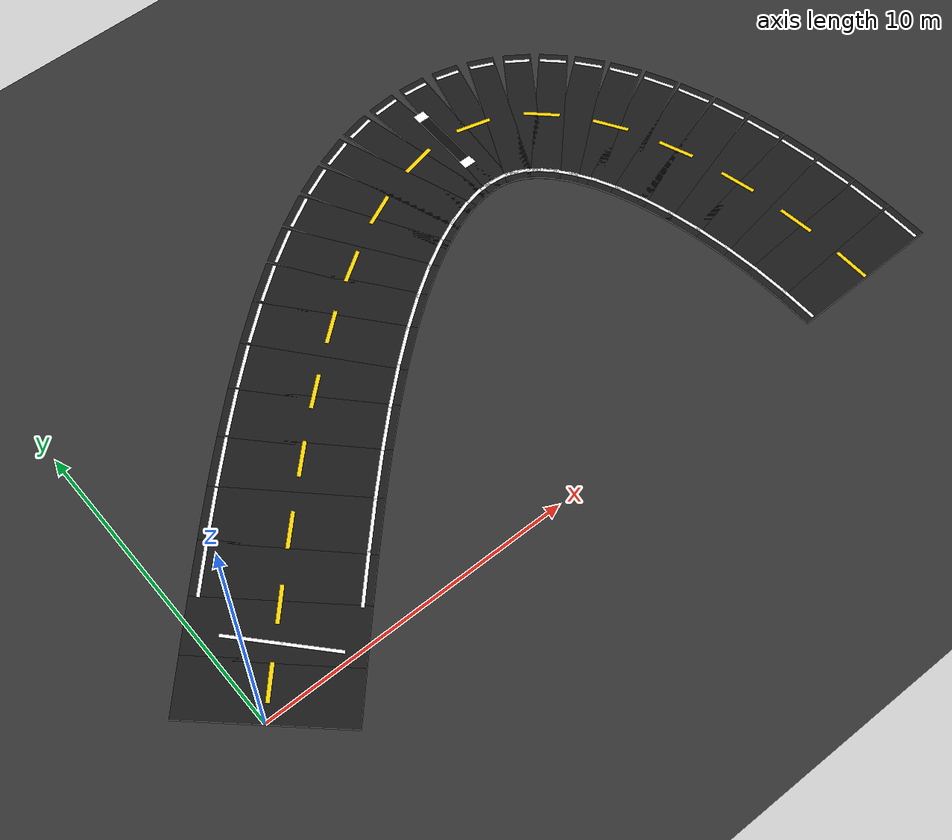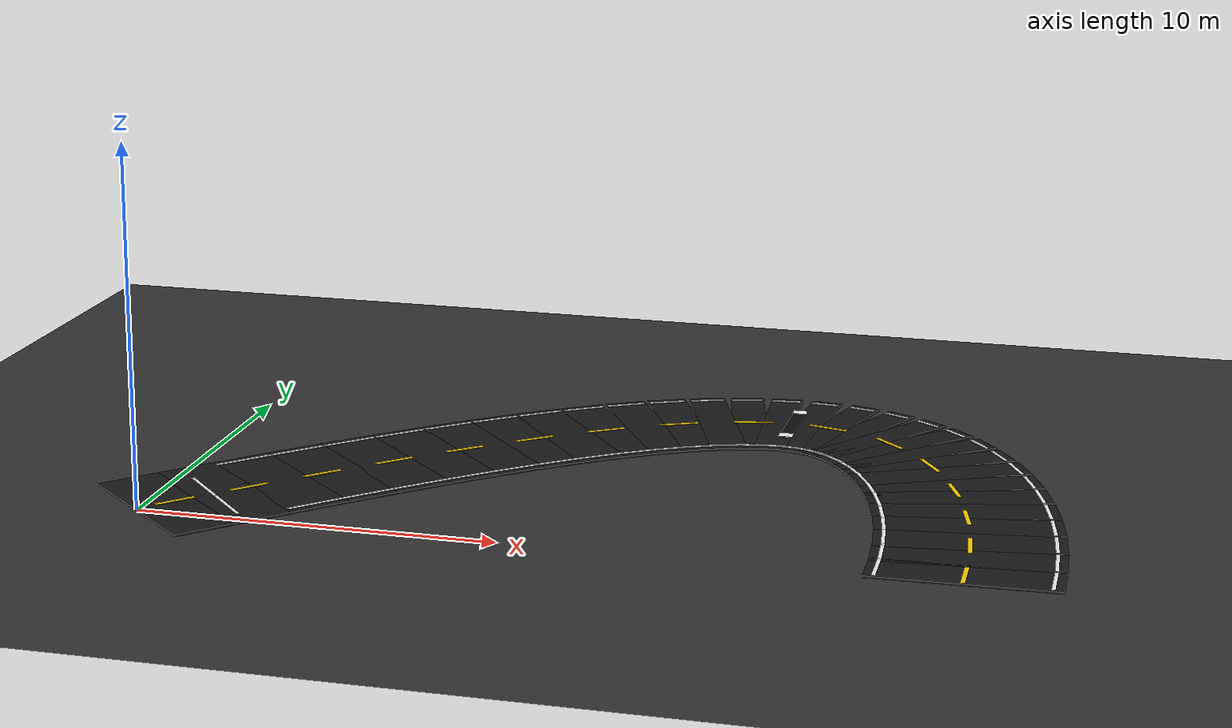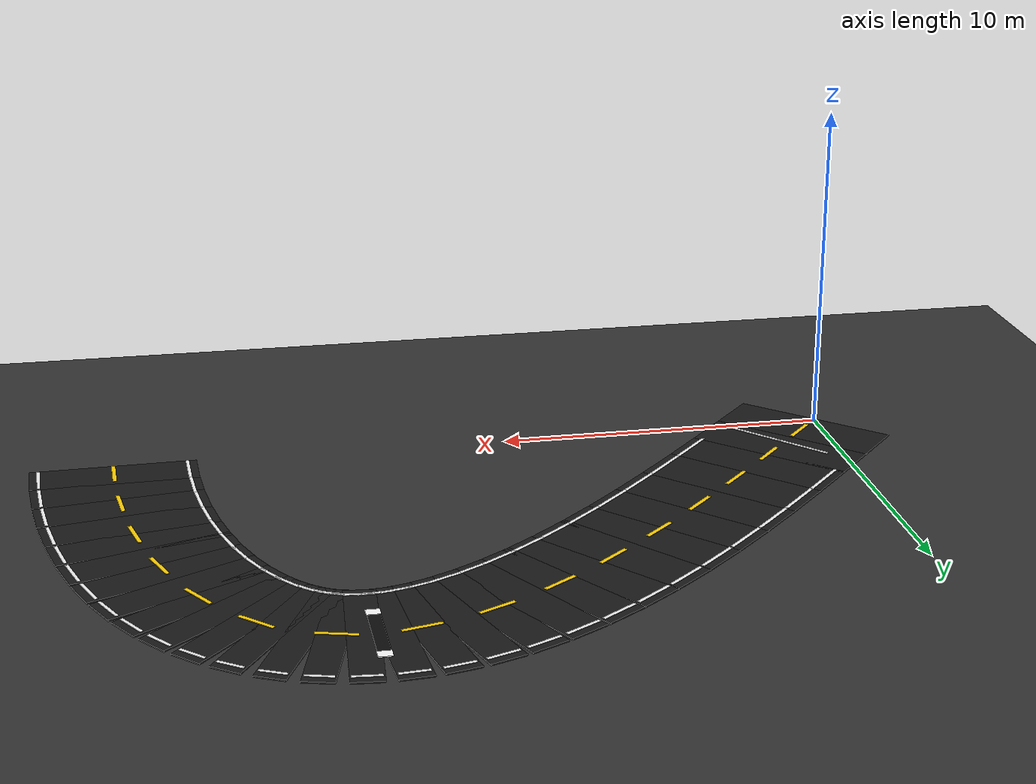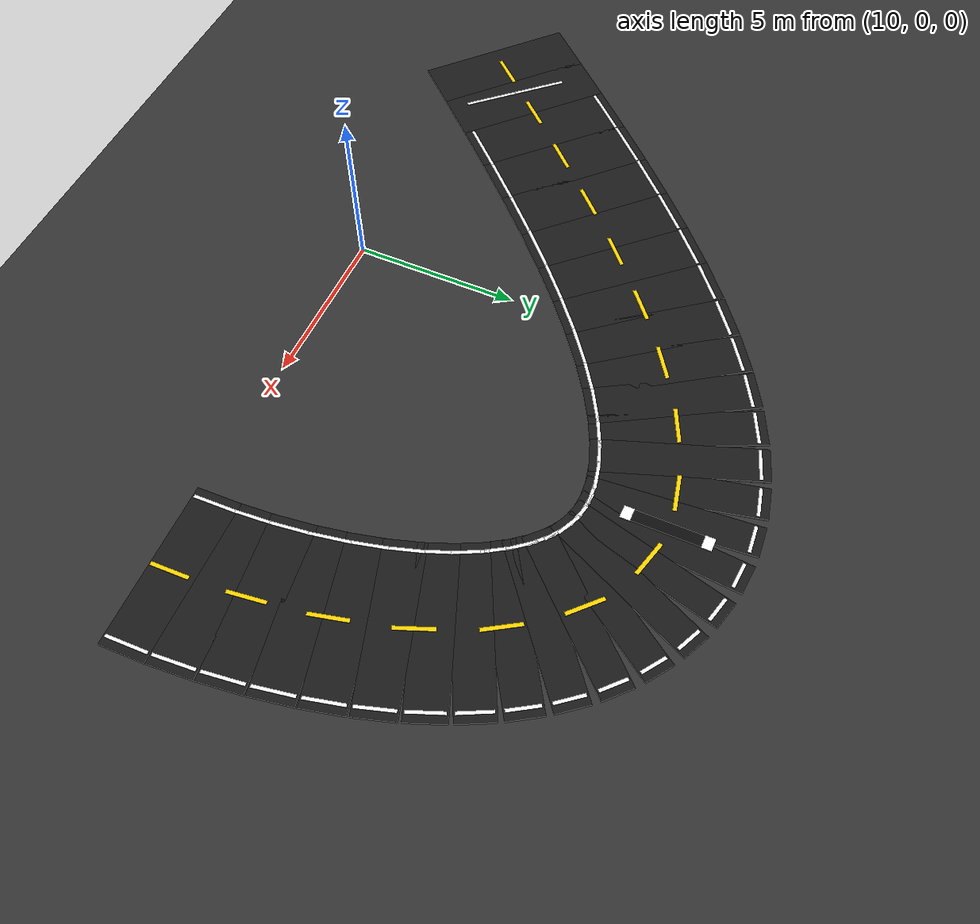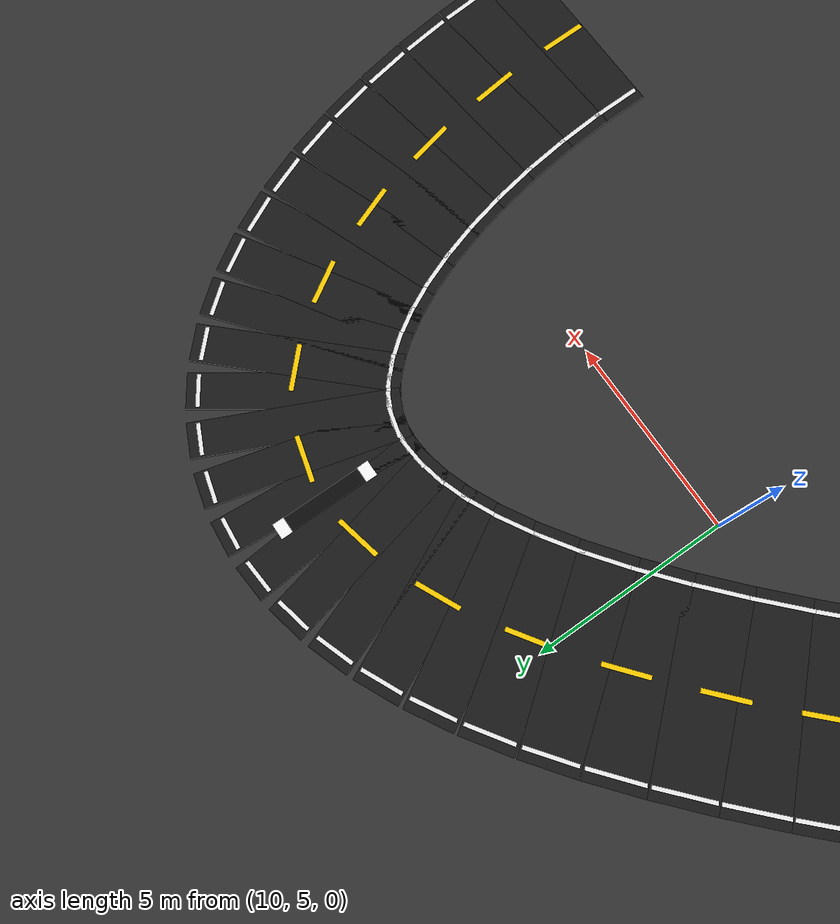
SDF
<sdf version="1.6">
 <world name="adas_figure8_circuit">
  <model name="ground">
   <static>true</static>
   <link name="link">
    <collision name="collision">
     <geometry><plane><normal>0 0 1</normal><size>80.0 80.0</size></plane></geometry>
    </collision>
    <visual name="visual">
     <geometry><plane><normal>0 0 1</normal><size>80.0 80.0</size></plane></geometry>
     <material><ambient>0.16 0.16 0.16 1</ambient><diffuse>0.20 0.20 0.20 1</diffuse></material>
    </visual>
   </link>
  </model>
  <model name="road_000">
   <static>true</static>
   <pose>0.5757 0.6272 0.025 0 0 0.828166</pose>
   <link name="link">
    <collision name="collision"><geometry><box><size>1.8027 5.000 0.05</size></box></geometry></collision>
    <visual name="visual">
     <geometry><box><size>1.8027 5.000 0.05</size></box></geometry>
     <material><ambient>0.07 0.07 0.07 1</ambient><diffuse>0.10 0.10 0.10 1</diffuse></material>
    </visual>
   </link>
  </model>
  <model name="road_001">
   <static>true</static>
   <pose>1.7255 1.8746 0.025 0 0 0.824044</pose>
   <link name="link">
    <collision name="collision"><geometry><box><size>1.7904 5.000 0.05</size></box></geometry></collision>
    <visual name="visual">
     <geometry><box><size>1.7904 5.000 0.05</size></box></geometry>
     <material><ambient>0.07 0.07 0.07 1</ambient><diffuse>0.10 0.10 0.10 1</diffuse></material>
    </visual>
   </link>
  </model>
  <model name="road_002">
   <static>true</static>
   <pose>2.8706 3.1016 0.025 0 0 0.815676</pose>
   <link name="link">
    <collision name="collision"><geometry><box><size>1.7661 5.000 0.05</size></box></geometry></collision>
    <visual name="visual">
     <geometry><box><size>1.7661 5.000 0.05</size></box></geometry>
     <material><ambient>0.07 0.07 0.07 1</ambient><diffuse>0.10 0.10 0.10 1</diffuse></material>
    </visual>
   </link>
  </model>
  <model name="road_003">
   <static>true</static>
   <pose>4.0078 4.2945 0.025 0 0 0.802808</pose>
   <link name="link">
    <collision name="collision"><geometry><box><size>1.7302 5.000 0.05</size></box></geometry></collision>
    <visual name="visual">
     <geometry><box><size>1.7302 5.000 0.05</size></box></geometry>
     <material><ambient>0.07 0.07 0.07 1</ambient><diffuse>0.10 0.10 0.10 1</diffuse></material>
    </visual>
   </link>
  </model>
  <model name="road_004">
   <static>true</static>
   <pose>5.1340 5.4404 0.025 0 0 0.785040</pose>
   <link name="link">
    <collision name="collision"><geometry><box><size>1.6833 5.000 0.05</size></box></geometry></collision>
    <visual name="visual">
     <geometry><box><size>1.6833 5.000 0.05</size></box></geometry>
     <material><ambient>0.07 0.07 0.07 1</ambient><diffuse>0.10 0.10 0.10 1</diffuse></material>
    </visual>
   </link>
  </model>
  <model name="road_005">
   <static>true</static>
   <pose>6.2462 6.5267 0.025 0 0 0.761799</pose>
   <link name="link">
    <collision name="collision"><geometry><box><size>1.6262 5.000 0.05</size></box></geometry></collision>
    <visual name="visual">
     <geometry><box><size>1.6262 5.000 0.05</size></box></geometry>
     <material><ambient>0.07 0.07 0.07 1</ambient><diffuse>0.10 0.10 0.10 1</diffuse></material>
    </visual>
   </link>
  </model>
  <model name="road_006">
   <static>true</static>
   <pose>7.3412 7.5415 0.025 0 0 0.732304</pose>
   <link name="link">
    <collision name="collision"><geometry><box><size>1.5600 5.000 0.05</size></box></geometry></collision>
    <visual name="visual">
     <geometry><box><size>1.5600 5.000 0.05</size></box></geometry>
     <material><ambient>0.07 0.07 0.07 1</ambient><diffuse>0.10 0.10 0.10 1</diffuse></material>
    </visual>
   </link>
  </model>
  <model name="road_007">
   <static>true</static>
   <pose>8.4162 8.4737 0.025 0 0 0.695520</pose>
   <link name="link">
    <collision name="collision"><geometry><box><size>1.4861 5.000 0.05</size></box></geometry></collision>
    <visual name="visual">
     <geometry><box><size>1.4861 5.000 0.05</size></box></geometry>
     <material><ambient>0.07 0.07 0.07 1</ambient><diffuse>0.10 0.10 0.10 1</diffuse></material>
    </visual>
   </link>
  </model>
  <model name="road_008">
   <static>true</static>
   <pose>9.4680 9.3130 0.025 0 0 0.650103</pose>
   <link name="link">
    <collision name="collision"><geometry><box><size>1.4060 5.000 0.05</size></box></geometry></collision>
    <visual name="visual">
     <geometry><box><size>1.4060 5.000 0.05</size></box></geometry>
     <material><ambient>0.07 0.07 0.07 1</ambient><diffuse>0.10 0.10 0.10 1</diffuse></material>
    </visual>
   </link>
  </model>
  <model name="road_009">
   <static>true</static>
   <pose>10.4939 10.0503 0.025 0 0 0.594333</pose>
   <link name="link">
    <collision name="collision"><geometry><box><size>1.3217 5.000 0.05</size></box></geometry></collision>
    <visual name="visual">
     <geometry><box><size>1.3217 5.000 0.05</size></box></geometry>
     <material><ambient>0.07 0.07 0.07 1</ambient><diffuse>0.10 0.10 0.10 1</diffuse></material>
    </visual>
   </link>
  </model>
  <model name="road_010">
   <static>true</static>
   <pose>11.4910 10.6774 0.025 0 0 0.526076</pose>
   <link name="link">
    <collision name="collision"><geometry><box><size>1.2356 5.000 0.05</size></box></geometry></collision>
    <visual name="visual">
     <geometry><box><size>1.2356 5.000 0.05</size></box></geometry>
     <material><ambient>0.07 0.07 0.07 1</ambient><diffuse>0.10 0.10 0.10 1</diffuse></material>
    </visual>
   </link>
  </model>
  <model name="road_011">
   <static>true</static>
   <pose>12.4567 11.1876 0.025 0 0 0.442808</pose>
   <link name="link">
    <collision name="collision"><geometry><box><size>1.1505 5.000 0.05</size></box></geometry></collision>
    <visual name="visual">
     <geometry><box><size>1.1505 5.000 0.05</size></box></geometry>
     <material><ambient>0.07 0.07 0.07 1</ambient><diffuse>0.10 0.10 0.10 1</diffuse></material>
    </visual>
   </link>
  </model>
  <model name="road_012">
   <static>true</static>
   <pose>13.3882 11.5752 0.025 0 0 0.341806</pose>
   <link name="link">
    <collision name="collision"><geometry><box><size>1.0699 5.000 0.05</size></box></geometry></collision>
    <visual name="visual">
     <geometry><box><size>1.0699 5.000 0.05</size></box></geometry>
     <material><ambient>0.07 0.07 0.07 1</ambient><diffuse>0.10 0.10 0.10 1</diffuse></material>
    </visual>
   </link>
  </model>
  <model name="road_013">
   <static>true</static>
   <pose>14.2830 11.8360 0.025 0 0 0.220696</pose>
   <link name="link">
    <collision name="collision"><geometry><box><size>0.9976 5.000 0.05</size></box></geometry></collision>
    <visual name="visual">
     <geometry><box><size>0.9976 5.000 0.05</size></box></geometry>
     <material><ambient>0.07 0.07 0.07 1</ambient><diffuse>0.10 0.10 0.10 1</diffuse></material>
    </visual>
   </link>
  </model>
  <model name="road_014">
   <static>true</static>
   <pose>15.1386 11.9671 0.025 0 0 0.078521</pose>
   <link name="link">
    <collision name="collision"><geometry><box><size>0.9381 5.000 0.05</size></box></geometry></collision>
    <visual name="visual">
     <geometry><box><size>0.9381 5.000 0.05</size></box></geometry>
     <material><ambient>0.07 0.07 0.07 1</ambient><diffuse>0.10 0.10 0.10 1</diffuse></material>
    </visual>
   </link>
  </model>
  <model name="road_015">
   <static>true</static>
   <pose>15.9528 11.9671 0.025 0 0 -0.082725</pose>
   <link name="link">
    <collision name="collision"><geometry><box><size>0.8956 5.000 0.05</size></box></geometry></collision>
    <visual name="visual">
     <geometry><box><size>0.8956 5.000 0.05</size></box></geometry>
     <material><ambient>0.07 0.07 0.07 1</ambient><diffuse>0.10 0.10 0.10 1</diffuse></material>
    </visual>
   </link>
  </model>
  <model name="road_016">
   <static>true</static>
   <pose>16.7232 11.8360 0.025 0 0 -0.256877</pose>
   <link name="link">
    <collision name="collision"><geometry><box><size>0.8734 5.000 0.05</size></box></geometry></collision>
    <visual name="visual">
     <geometry><box><size>0.8734 5.000 0.05</size></box></geometry>
     <material><ambient>0.07 0.07 0.07 1</ambient><diffuse>0.10 0.10 0.10 1</diffuse></material>
    </visual>
   </link>
  </model>
  <model name="road_017">
   <static>true</static>
   <pose>17.4478 11.5752 0.025 0 0 -0.434146</pose>
   <link name="link">
    <collision name="collision"><geometry><box><size>0.8729 5.000 0.05</size></box></geometry></collision>
    <visual name="visual">
     <geometry><box><size>0.8729 5.000 0.05</size></box></geometry>
     <material><ambient>0.07 0.07 0.07 1</ambient><diffuse>0.10 0.10 0.10 1</diffuse></material>
    </visual>
   </link>
  </model>
  <model name="road_018">
   <static>true</static>
   <pose>18.1246 11.1876 0.025 0 0 -0.603974</pose>
   <link name="link">
    <collision name="collision"><geometry><box><size>0.8926 5.000 0.05</size></box></geometry></collision>
    <visual name="visual">
     <geometry><box><size>0.8926 5.000 0.05</size></box></geometry>
     <material><ambient>0.07 0.07 0.07 1</ambient><diffuse>0.10 0.10 0.10 1</diffuse></material>
    </visual>
   </link>
  </model>
  <model name="road_019">
   <static>true</static>
   <pose>18.7517 10.6774 0.025 0 0 -0.758473</pose>
   <link name="link">
    <collision name="collision"><geometry><box><size>0.9291 5.000 0.05</size></box></geometry></collision>
    <visual name="visual">
     <geometry><box><size>0.9291 5.000 0.05</size></box></geometry>
     <material><ambient>0.07 0.07 0.07 1</ambient><diffuse>0.10 0.10 0.10 1</diffuse></material>
    </visual>
   </link>
  </model>
  <model name="road_020">
   <static>true</static>
   <pose>19.3274 10.0503 0.025 0 0 -0.894005</pose>
   <link name="link">
    <collision name="collision"><geometry><box><size>0.9775 5.000 0.05</size></box></geometry></collision>
    <visual name="visual">
     <geometry><box><size>0.9775 5.000 0.05</size></box></geometry>
     <material><ambient>0.07 0.07 0.07 1</ambient><diffuse>0.10 0.10 0.10 1</diffuse></material>
    </visual>
   </link>
  </model>
  <model name="road_021">
   <static>true</static>
   <pose>19.8501 9.3130 0.025 0 0 -1.010547</pose>
   <link name="link">
    <collision name="collision"><geometry><box><size>1.0331 5.000 0.05</size></box></geometry></collision>
    <visual name="visual">
     <geometry><box><size>1.0331 5.000 0.05</size></box></geometry>
     <material><ambient>0.07 0.07 0.07 1</ambient><diffuse>0.10 0.10 0.10 1</diffuse></material>
    </visual>
   </link>
  </model>
  <model name="road_022">
   <static>true</static>
   <pose>20.3184 8.4737 0.025 0 0 -1.110140</pose>
   <link name="link">
    <collision name="collision"><geometry><box><size>1.0915 5.000 0.05</size></box></geometry></collision>
    <visual name="visual">
     <geometry><box><size>1.0915 5.000 0.05</size></box></geometry>
     <material><ambient>0.07 0.07 0.07 1</ambient><diffuse>0.10 0.10 0.10 1</diffuse></material>
    </visual>
   </link>
  </model>
  <model name="road_023">
   <static>true</static>
   <pose>20.7310 7.5415 0.025 0 0 -1.195586</pose>
   <link name="link">
    <collision name="collision"><geometry><box><size>1.1491 5.000 0.05</size></box></geometry></collision>
    <visual name="visual">
     <geometry><box><size>1.1491 5.000 0.05</size></box></geometry>
     <material><ambient>0.07 0.07 0.07 1</ambient><diffuse>0.10 0.10 0.10 1</diffuse></material>
    </visual>
   </link>
  </model>
  <model name="road_024">
   <static>true</static>
   <pose>21.0868 6.5267 0.025 0 0 -1.269703</pose>
   <link name="link">
    <collision name="collision"><geometry><box><size>1.2030 5.000 0.05</size></box></geometry></collision>
    <visual name="visual">
     <geometry><box><size>1.2030 5.000 0.05</size></box></geometry>
     <material><ambient>0.07 0.07 0.07 1</ambient><diffuse>0.10 0.10 0.10 1</diffuse></material>
    </visual>
   </link>
  </model>
  <model name="road_025">
   <static>true</static>
   <pose>21.3848 5.4404 0.025 0 0 -1.335014</pose>
   <link name="link">
    <collision name="collision"><geometry><box><size>1.2510 5.000 0.05</size></box></geometry></collision>
    <visual name="visual">
     <geometry><box><size>1.2510 5.000 0.05</size></box></geometry>
     <material><ambient>0.07 0.07 0.07 1</ambient><diffuse>0.10 0.10 0.10 1</diffuse></material>
    </visual>
   </link>
  </model>
  <model name="road_026">
   <static>true</static>
   <pose>21.6242 4.2945 0.025 0 0 -1.393677</pose>
   <link name="link">
    <collision name="collision"><geometry><box><size>1.2913 5.000 0.05</size></box></geometry></collision>
    <visual name="visual">
     <geometry><box><size>1.2913 5.000 0.05</size></box></geometry>
     <material><ambient>0.07 0.07 0.07 1</ambient><diffuse>0.10 0.10 0.10 1</diffuse></material>
    </visual>
   </link>
  </model>
  <model name="road_027">
   <static>true</static>
   <pose>21.8043 3.1016 0.025 0 0 -1.447513</pose>
   <link name="link">
    <collision name="collision"><geometry><box><size>1.3225 5.000 0.05</size></box></geometry></collision>
    <visual name="visual">
     <geometry><box><size>1.3225 5.000 0.05</size></box></geometry>
     <material><ambient>0.07 0.07 0.07 1</ambient><diffuse>0.10 0.10 0.10 1</diffuse></material>
    </visual>
   </link>
  </model>
  <model name="road_028">
   <static>true</static>
   <pose>21.9247 1.8746 0.025 0 0 -1.498082</pose>
   <link name="link">
    <collision name="collision"><geometry><box><size>1.3439 5.000 0.05</size></box></geometry></collision>
    <visual name="visual">
     <geometry><box><size>1.3439 5.000 0.05</size></box></geometry>
     <material><ambient>0.07 0.07 0.07 1</ambient><diffuse>0.10 0.10 0.10 1</diffuse></material>
    </visual>
   </link>
  </model>
  <model name="road_029">
   <static>true</static>
   <pose>21.9849 0.6272 0.025 0 0 -1.546764</pose>
   <link name="link">
    <collision name="collision"><geometry><box><size>1.3547 5.000 0.05</size></box></geometry></collision>
    <visual name="visual">
     <geometry><box><size>1.3547 5.000 0.05</size></box></geometry>
     <material><ambient>0.07 0.07 0.07 1</ambient><diffuse>0.10 0.10 0.10 1</diffuse></material>
    </visual>
   </link>
  </model>
  <model name="center_dash_000">
   <static>true</static>
   <pose>0.7523 0.8196 0.058 0 0 0.828166</pose>
   <link name="link">
    <visual name="visual">
     <geometry><box><size>1.150 0.12 0.02</size></box></geometry>
     <material><ambient>1 0.82 0 1</ambient><diffuse>1 0.82 0 1</diffuse></material>
    </visual>
   </link>
  </model>
  <model name="center_dash_001">
   <static>true</static>
   <pose>2.2620 2.4543 0.058 0 0 0.824044</pose>
   <link name="link">
    <visual name="visual">
     <geometry><box><size>1.150 0.12 0.02</size></box></geometry>
     <material><ambient>1 0.82 0 1</ambient><diffuse>1 0.82 0 1</diffuse></material>
    </visual>
   </link>
  </model>
  <model name="center_dash_002">
   <static>true</static>
   <pose>3.7914 4.0704 0.058 0 0 0.802808</pose>
   <link name="link">
    <visual name="visual">
     <geometry><box><size>1.150 0.12 0.02</size></box></geometry>
     <material><ambient>1 0.82 0 1</ambient><diffuse>1 0.82 0 1</diffuse></material>
    </visual>
   </link>
  </model>
  <model name="center_dash_003">
   <static>true</static>
   <pose>5.3511 5.6573 0.058 0 0 0.785040</pose>
   <link name="link">
    <visual name="visual">
     <geometry><box><size>1.150 0.12 0.02</size></box></geometry>
     <material><ambient>1 0.82 0 1</ambient><diffuse>1 0.82 0 1</diffuse></material>
    </visual>
   </link>
  </model>
  <model name="center_dash_004">
   <static>true</static>
   <pose>6.9576 7.1966 0.058 0 0 0.732304</pose>
   <link name="link">
    <visual name="visual">
     <geometry><box><size>1.150 0.12 0.02</size></box></geometry>
     <material><ambient>1 0.82 0 1</ambient><diffuse>1 0.82 0 1</diffuse></material>
    </visual>
   </link>
  </model>
  <model name="center_dash_005">
   <static>true</static>
   <pose>8.6358 8.6570 0.058 0 0 0.695520</pose>
   <link name="link">
    <visual name="visual">
     <geometry><box><size>1.150 0.12 0.02</size></box></geometry>
     <material><ambient>1 0.82 0 1</ambient><diffuse>1 0.82 0 1</diffuse></material>
    </visual>
   </link>
  </model>
  <model name="center_dash_006">
   <static>true</static>
   <pose>10.4122 9.9951 0.058 0 0 0.594333</pose>
   <link name="link">
    <visual name="visual">
     <geometry><box><size>1.150 0.12 0.02</size></box></geometry>
     <material><ambient>1 0.82 0 1</ambient><diffuse>1 0.82 0 1</diffuse></material>
    </visual>
   </link>
  </model>
  <model name="center_dash_007">
   <static>true</static>
   <pose>12.3255 11.1254 0.058 0 0 0.442808</pose>
   <link name="link">
    <visual name="visual">
     <geometry><box><size>1.150 0.12 0.02</size></box></geometry>
     <material><ambient>1 0.82 0 1</ambient><diffuse>1 0.82 0 1</diffuse></material>
    </visual>
   </link>
  </model>
  <model name="center_dash_008">
   <static>true</static>
   <pose>14.4156 11.8658 0.058 0 0 0.220696</pose>
   <link name="link">
    <visual name="visual">
     <geometry><box><size>1.150 0.12 0.02</size></box></geometry>
     <material><ambient>1 0.82 0 1</ambient><diffuse>1 0.82 0 1</diffuse></material>
    </visual>
   </link>
  </model>
  <model name="center_dash_009">
   <static>true</static>
   <pose>16.6187 11.8635 0.058 0 0 -0.256877</pose>
   <link name="link">
    <visual name="visual">
     <geometry><box><size>1.150 0.12 0.02</size></box></geometry>
     <material><ambient>1 0.82 0 1</ambient><diffuse>1 0.82 0 1</diffuse></material>
    </visual>
   </link>
  </model>
  <model name="center_dash_010">
   <static>true</static>
   <pose>18.5705 10.8491 0.058 0 0 -0.758473</pose>
   <link name="link">
    <visual name="visual">
     <geometry><box><size>1.150 0.12 0.02</size></box></geometry>
     <material><ambient>1 0.82 0 1</ambient><diffuse>1 0.82 0 1</diffuse></material>
    </visual>
   </link>
  </model>
  <model name="center_dash_011">
   <static>true</static>
   <pose>19.9653 9.1292 0.058 0 0 -1.010547</pose>
   <link name="link">
    <visual name="visual">
     <geometry><box><size>1.150 0.12 0.02</size></box></geometry>
     <material><ambient>1 0.82 0 1</ambient><diffuse>1 0.82 0 1</diffuse></material>
    </visual>
   </link>
  </model>
  <model name="center_dash_012">
   <static>true</static>
   <pose>20.8994 7.1141 0.058 0 0 -1.195586</pose>
   <link name="link">
    <visual name="visual">
     <geometry><box><size>1.150 0.12 0.02</size></box></geometry>
     <material><ambient>1 0.82 0 1</ambient><diffuse>1 0.82 0 1</diffuse></material>
    </visual>
   </link>
  </model>
  <model name="center_dash_013">
   <static>true</static>
   <pose>21.4973 4.9724 0.058 0 0 -1.335014</pose>
   <link name="link">
    <visual name="visual">
     <geometry><box><size>1.150 0.12 0.02</size></box></geometry>
     <material><ambient>1 0.82 0 1</ambient><diffuse>1 0.82 0 1</diffuse></material>
    </visual>
   </link>
  </model>
  <model name="center_dash_014">
   <static>true</static>
   <pose>21.8447 2.7756 0.058 0 0 -1.447513</pose>
   <link name="link">
    <visual name="visual">
     <geometry><box><size>1.150 0.12 0.02</size></box></geometry>
     <material><ambient>1 0.82 0 1</ambient><diffuse>1 0.82 0 1</diffuse></material>
    </visual>
   </link>
  </model>
  <model name="center_dash_015">
   <static>true</static>
   <pose>21.9866 0.5561 0.058 0 0 -1.546764</pose>
   <link name="link">
    <visual name="visual">
     <geometry><box><size>1.150 0.12 0.02</size></box></geometry>
     <material><ambient>1 0.82 0 1</ambient><diffuse>1 0.82 0 1</diffuse></material>
    </visual>
   </link>
  </model>
  <model name="edge_left_002">
   <static>true</static>
   <pose>1.2540 4.6231 0.058 0 0 0.815676</pose>
   <link name="link">
    <visual name="visual">
     <geometry><box><size>1.6661 0.10 0.02</size></box></geometry>
     <material><ambient>0.95 0.95 0.95 1</ambient><diffuse>0.95 0.95 0.95 1</diffuse></material>
    </visual>
   </link>
  </model>
  <model name="edge_left_003">
   <static>true</static>
   <pose>2.4109 5.8367 0.058 0 0 0.802808</pose>
   <link name="link">
    <visual name="visual">
     <geometry><box><size>1.6302 0.10 0.02</size></box></geometry>
     <material><ambient>0.95 0.95 0.95 1</ambient><diffuse>0.95 0.95 0.95 1</diffuse></material>
    </visual>
   </link>
  </model>
  <model name="edge_left_004">
   <static>true</static>
   <pose>3.5648 7.0108 0.058 0 0 0.785040</pose>
   <link name="link">
    <visual name="visual">
     <geometry><box><size>1.5833 0.10 0.02</size></box></geometry>
     <material><ambient>0.95 0.95 0.95 1</ambient><diffuse>0.95 0.95 0.95 1</diffuse></material>
    </visual>
   </link>
  </model>
  <model name="edge_left_005">
   <static>true</static>
   <pose>4.7139 8.1331 0.058 0 0 0.761799</pose>
   <link name="link">
    <visual name="visual">
     <geometry><box><size>1.5262 0.10 0.02</size></box></geometry>
     <material><ambient>0.95 0.95 0.95 1</ambient><diffuse>0.95 0.95 0.95 1</diffuse></material>
    </visual>
   </link>
  </model>
  <model name="edge_left_006">
   <static>true</static>
   <pose>5.8570 9.1924 0.058 0 0 0.732304</pose>
   <link name="link">
    <visual name="visual">
     <geometry><box><size>1.4600 0.10 0.02</size></box></geometry>
     <material><ambient>0.95 0.95 0.95 1</ambient><diffuse>0.95 0.95 0.95 1</diffuse></material>
    </visual>
   </link>
  </model>
  <model name="edge_left_007">
   <static>true</static>
   <pose>6.9936 10.1780 0.058 0 0 0.695520</pose>
   <link name="link">
    <visual name="visual">
     <geometry><box><size>1.3861 0.10 0.02</size></box></geometry>
     <material><ambient>0.95 0.95 0.95 1</ambient><diffuse>0.95 0.95 0.95 1</diffuse></material>
    </visual>
   </link>
  </model>
  <model name="edge_left_008">
   <static>true</static>
   <pose>8.1243 11.0801 0.058 0 0 0.650103</pose>
   <link name="link">
    <visual name="visual">
     <geometry><box><size>1.3060 0.10 0.02</size></box></geometry>
     <material><ambient>0.95 0.95 0.95 1</ambient><diffuse>0.95 0.95 0.95 1</diffuse></material>
    </visual>
   </link>
  </model>
  <model name="edge_left_009">
   <static>true</static>
   <pose>9.2508 11.8896 0.058 0 0 0.594333</pose>
   <link name="link">
    <visual name="visual">
     <geometry><box><size>1.2217 0.10 0.02</size></box></geometry>
     <material><ambient>0.95 0.95 0.95 1</ambient><diffuse>0.95 0.95 0.95 1</diffuse></material>
    </visual>
   </link>
  </model>
  <model name="edge_left_010">
   <static>true</static>
   <pose>10.3763 12.5972 0.058 0 0 0.526076</pose>
   <link name="link">
    <visual name="visual">
     <geometry><box><size>1.1356 0.10 0.02</size></box></geometry>
     <material><ambient>0.95 0.95 0.95 1</ambient><diffuse>0.95 0.95 0.95 1</diffuse></material>
    </visual>
   </link>
  </model>
  <model name="edge_left_011">
   <static>true</static>
   <pose>11.5054 13.1935 0.058 0 0 0.442808</pose>
   <link name="link">
    <visual name="visual">
     <geometry><box><size>1.0505 0.10 0.02</size></box></geometry>
     <material><ambient>0.95 0.95 0.95 1</ambient><diffuse>0.95 0.95 0.95 1</diffuse></material>
    </visual>
   </link>
  </model>
  <model name="edge_left_012">
   <static>true</static>
   <pose>12.6440 13.6668 0.058 0 0 0.341806</pose>
   <link name="link">
    <visual name="visual">
     <geometry><box><size>0.9699 0.10 0.02</size></box></geometry>
     <material><ambient>0.95 0.95 0.95 1</ambient><diffuse>0.95 0.95 0.95 1</diffuse></material>
    </visual>
   </link>
  </model>
  <model name="edge_left_013">
   <static>true</static>
   <pose>13.7970 14.0022 0.058 0 0 0.220696</pose>
   <link name="link">
    <visual name="visual">
     <geometry><box><size>0.8976 0.10 0.02</size></box></geometry>
     <material><ambient>0.95 0.95 0.95 1</ambient><diffuse>0.95 0.95 0.95 1</diffuse></material>
    </visual>
   </link>
  </model>
  <model name="edge_left_014">
   <static>true</static>
   <pose>14.9645 14.1803 0.058 0 0 0.078521</pose>
   <link name="link">
    <visual name="visual">
     <geometry><box><size>0.8381 0.10 0.02</size></box></geometry>
     <material><ambient>0.95 0.95 0.95 1</ambient><diffuse>0.95 0.95 0.95 1</diffuse></material>
    </visual>
   </link>
  </model>
  <model name="edge_left_015">
   <static>true</static>
   <pose>16.1362 14.1795 0.058 0 0 -0.082725</pose>
   <link name="link">
    <visual name="visual">
     <geometry><box><size>0.7956 0.10 0.02</size></box></geometry>
     <material><ambient>0.95 0.95 0.95 1</ambient><diffuse>0.95 0.95 0.95 1</diffuse></material>
    </visual>
   </link>
  </model>
  <model name="edge_left_016">
   <static>true</static>
   <pose>17.2872 13.9832 0.058 0 0 -0.256877</pose>
   <link name="link">
    <visual name="visual">
     <geometry><box><size>0.7734 0.10 0.02</size></box></geometry>
     <material><ambient>0.95 0.95 0.95 1</ambient><diffuse>0.95 0.95 0.95 1</diffuse></material>
    </visual>
   </link>
  </model>
  <model name="edge_left_017">
   <static>true</static>
   <pose>18.3816 13.5893 0.058 0 0 -0.434146</pose>
   <link name="link">
    <visual name="visual">
     <geometry><box><size>0.7729 0.10 0.02</size></box></geometry>
     <material><ambient>0.95 0.95 0.95 1</ambient><diffuse>0.95 0.95 0.95 1</diffuse></material>
    </visual>
   </link>
  </model>
  <model name="edge_left_018">
   <static>true</static>
   <pose>19.3853 13.0149 0.058 0 0 -0.603974</pose>
   <link name="link">
    <visual name="visual">
     <geometry><box><size>0.7926 0.10 0.02</size></box></geometry>
     <material><ambient>0.95 0.95 0.95 1</ambient><diffuse>0.95 0.95 0.95 1</diffuse></material>
    </visual>
   </link>
  </model>
  <model name="edge_left_019">
   <static>true</static>
   <pose>20.2786 12.2889 0.058 0 0 -0.758473</pose>
   <link name="link">
    <visual name="visual">
     <geometry><box><size>0.8291 0.10 0.02</size></box></geometry>
     <material><ambient>0.95 0.95 0.95 1</ambient><diffuse>0.95 0.95 0.95 1</diffuse></material>
    </visual>
   </link>
  </model>
  <model name="edge_left_020">
   <static>true</static>
   <pose>21.0580 11.4406 0.058 0 0 -0.894005</pose>
   <link name="link">
    <visual name="visual">
     <geometry><box><size>0.8775 0.10 0.02</size></box></geometry>
     <material><ambient>0.95 0.95 0.95 1</ambient><diffuse>0.95 0.95 0.95 1</diffuse></material>
    </visual>
   </link>
  </model>
  <model name="edge_left_021">
   <static>true</static>
   <pose>21.7307 10.4927 0.058 0 0 -1.010547</pose>
   <link name="link">
    <visual name="visual">
     <geometry><box><size>0.9331 0.10 0.02</size></box></geometry>
     <material><ambient>0.95 0.95 0.95 1</ambient><diffuse>0.95 0.95 0.95 1</diffuse></material>
    </visual>
   </link>
  </model>
  <model name="edge_left_022">
   <static>true</static>
   <pose>22.3070 9.4605 0.058 0 0 -1.110140</pose>
   <link name="link">
    <visual name="visual">
     <geometry><box><size>0.9915 0.10 0.02</size></box></geometry>
     <material><ambient>0.95 0.95 0.95 1</ambient><diffuse>0.95 0.95 0.95 1</diffuse></material>
    </visual>
   </link>
  </model>
  <model name="edge_left_023">
   <static>true</static>
   <pose>22.7966 8.3551 0.058 0 0 -1.195586</pose>
   <link name="link">
    <visual name="visual">
     <geometry><box><size>1.0491 0.10 0.02</size></box></geometry>
     <material><ambient>0.95 0.95 0.95 1</ambient><diffuse>0.95 0.95 0.95 1</diffuse></material>
    </visual>
   </link>
  </model>
  <model name="edge_left_024">
   <static>true</static>
   <pose>23.2069 7.1851 0.058 0 0 -1.269703</pose>
   <link name="link">
    <visual name="visual">
     <geometry><box><size>1.1030 0.10 0.02</size></box></geometry>
     <material><ambient>0.95 0.95 0.95 1</ambient><diffuse>0.95 0.95 0.95 1</diffuse></material>
    </visual>
   </link>
  </model>
  <model name="edge_left_025">
   <static>true</static>
   <pose>23.5434 5.9590 0.058 0 0 -1.335014</pose>
   <link name="link">
    <visual name="visual">
     <geometry><box><size>1.1510 0.10 0.02</size></box></geometry>
     <material><ambient>0.95 0.95 0.95 1</ambient><diffuse>0.95 0.95 0.95 1</diffuse></material>
    </visual>
   </link>
  </model>
  <model name="edge_left_026">
   <static>true</static>
   <pose>23.8095 4.6857 0.058 0 0 -1.393677</pose>
   <link name="link">
    <visual name="visual">
     <geometry><box><size>1.1913 0.10 0.02</size></box></geometry>
     <material><ambient>0.95 0.95 0.95 1</ambient><diffuse>0.95 0.95 0.95 1</diffuse></material>
    </visual>
   </link>
  </model>
  <model name="edge_left_027">
   <static>true</static>
   <pose>24.0075 3.3746 0.058 0 0 -1.447513</pose>
   <link name="link">
    <visual name="visual">
     <geometry><box><size>1.2225 0.10 0.02</size></box></geometry>
     <material><ambient>0.95 0.95 0.95 1</ambient><diffuse>0.95 0.95 0.95 1</diffuse></material>
    </visual>
   </link>
  </model>
  <model name="edge_left_028">
   <static>true</static>
   <pose>24.1388 2.0359 0.058 0 0 -1.498082</pose>
   <link name="link">
    <visual name="visual">
     <geometry><box><size>1.2439 0.10 0.02</size></box></geometry>
     <material><ambient>0.95 0.95 0.95 1</ambient><diffuse>0.95 0.95 0.95 1</diffuse></material>
    </visual>
   </link>
  </model>
  <model name="edge_left_029">
   <static>true</static>
   <pose>24.2043 0.6805 0.058 0 0 -1.546764</pose>
   <link name="link">
    <visual name="visual">
     <geometry><box><size>1.2547 0.10 0.02</size></box></geometry>
     <material><ambient>0.95 0.95 0.95 1</ambient><diffuse>0.95 0.95 0.95 1</diffuse></material>
    </visual>
   </link>
  </model>
  <model name="edge_right_002">
   <static>true</static>
   <pose>4.4872 1.5800 0.058 0 0 0.815676</pose>
   <link name="link">
    <visual name="visual">
     <geometry><box><size>1.6661 0.10 0.02</size></box></geometry>
     <material><ambient>0.95 0.95 0.95 1</ambient><diffuse>0.95 0.95 0.95 1</diffuse></material>
    </visual>
   </link>
  </model>
  <model name="edge_right_003">
   <static>true</static>
   <pose>5.6047 2.7523 0.058 0 0 0.802808</pose>
   <link name="link">
    <visual name="visual">
     <geometry><box><size>1.6302 0.10 0.02</size></box></geometry>
     <material><ambient>0.95 0.95 0.95 1</ambient><diffuse>0.95 0.95 0.95 1</diffuse></material>
    </visual>
   </link>
  </model>
  <model name="edge_right_004">
   <static>true</static>
   <pose>6.7033 3.8701 0.058 0 0 0.785040</pose>
   <link name="link">
    <visual name="visual">
     <geometry><box><size>1.5833 0.10 0.02</size></box></geometry>
     <material><ambient>0.95 0.95 0.95 1</ambient><diffuse>0.95 0.95 0.95 1</diffuse></material>
    </visual>
   </link>
  </model>
  <model name="edge_right_005">
   <static>true</static>
   <pose>7.7785 4.9203 0.058 0 0 0.761799</pose>
   <link name="link">
    <visual name="visual">
     <geometry><box><size>1.5262 0.10 0.02</size></box></geometry>
     <material><ambient>0.95 0.95 0.95 1</ambient><diffuse>0.95 0.95 0.95 1</diffuse></material>
    </visual>
   </link>
  </model>
  <model name="edge_right_006">
   <static>true</static>
   <pose>8.8255 5.8906 0.058 0 0 0.732304</pose>
   <link name="link">
    <visual name="visual">
     <geometry><box><size>1.4600 0.10 0.02</size></box></geometry>
     <material><ambient>0.95 0.95 0.95 1</ambient><diffuse>0.95 0.95 0.95 1</diffuse></material>
    </visual>
   </link>
  </model>
  <model name="edge_right_007">
   <static>true</static>
   <pose>9.8387 6.7693 0.058 0 0 0.695520</pose>
   <link name="link">
    <visual name="visual">
     <geometry><box><size>1.3861 0.10 0.02</size></box></geometry>
     <material><ambient>0.95 0.95 0.95 1</ambient><diffuse>0.95 0.95 0.95 1</diffuse></material>
    </visual>
   </link>
  </model>
  <model name="edge_right_008">
   <static>true</static>
   <pose>10.8117 7.5458 0.058 0 0 0.650103</pose>
   <link name="link">
    <visual name="visual">
     <geometry><box><size>1.3060 0.10 0.02</size></box></geometry>
     <material><ambient>0.95 0.95 0.95 1</ambient><diffuse>0.95 0.95 0.95 1</diffuse></material>
    </visual>
   </link>
  </model>
  <model name="edge_right_009">
   <static>true</static>
   <pose>11.7370 8.2109 0.058 0 0 0.594333</pose>
   <link name="link">
    <visual name="visual">
     <geometry><box><size>1.2217 0.10 0.02</size></box></geometry>
     <material><ambient>0.95 0.95 0.95 1</ambient><diffuse>0.95 0.95 0.95 1</diffuse></material>
    </visual>
   </link>
  </model>
  <model name="edge_right_010">
   <static>true</static>
   <pose>12.6058 8.7576 0.058 0 0 0.526076</pose>
   <link name="link">
    <visual name="visual">
     <geometry><box><size>1.1356 0.10 0.02</size></box></geometry>
     <material><ambient>0.95 0.95 0.95 1</ambient><diffuse>0.95 0.95 0.95 1</diffuse></material>
    </visual>
   </link>
  </model>
  <model name="edge_right_011">
   <static>true</static>
   <pose>13.4079 9.1817 0.058 0 0 0.442808</pose>
   <link name="link">
    <visual name="visual">
     <geometry><box><size>1.0505 0.10 0.02</size></box></geometry>
     <material><ambient>0.95 0.95 0.95 1</ambient><diffuse>0.95 0.95 0.95 1</diffuse></material>
    </visual>
   </link>
  </model>
  <model name="edge_right_012">
   <static>true</static>
   <pose>14.1323 9.4836 0.058 0 0 0.341806</pose>
   <link name="link">
    <visual name="visual">
     <geometry><box><size>0.9699 0.10 0.02</size></box></geometry>
     <material><ambient>0.95 0.95 0.95 1</ambient><diffuse>0.95 0.95 0.95 1</diffuse></material>
    </visual>
   </link>
  </model>
  <model name="edge_right_013">
   <static>true</static>
   <pose>14.7689 9.6699 0.058 0 0 0.220696</pose>
   <link name="link">
    <visual name="visual">
     <geometry><box><size>0.8976 0.10 0.02</size></box></geometry>
     <material><ambient>0.95 0.95 0.95 1</ambient><diffuse>0.95 0.95 0.95 1</diffuse></material>
    </visual>
   </link>
  </model>
  <model name="edge_right_014">
   <static>true</static>
   <pose>15.3127 9.7540 0.058 0 0 0.078521</pose>
   <link name="link">
    <visual name="visual">
     <geometry><box><size>0.8381 0.10 0.02</size></box></geometry>
     <material><ambient>0.95 0.95 0.95 1</ambient><diffuse>0.95 0.95 0.95 1</diffuse></material>
    </visual>
   </link>
  </model>
  <model name="edge_right_015">
   <static>true</static>
   <pose>15.7693 9.7547 0.058 0 0 -0.082725</pose>
   <link name="link">
    <visual name="visual">
     <geometry><box><size>0.7956 0.10 0.02</size></box></geometry>
     <material><ambient>0.95 0.95 0.95 1</ambient><diffuse>0.95 0.95 0.95 1</diffuse></material>
    </visual>
   </link>
  </model>
  <model name="edge_right_016">
   <static>true</static>
   <pose>16.1592 9.6889 0.058 0 0 -0.256877</pose>
   <link name="link">
    <visual name="visual">
     <geometry><box><size>0.7734 0.10 0.02</size></box></geometry>
     <material><ambient>0.95 0.95 0.95 1</ambient><diffuse>0.95 0.95 0.95 1</diffuse></material>
    </visual>
   </link>
  </model>
  <model name="edge_right_017">
   <static>true</static>
   <pose>16.5140 9.5612 0.058 0 0 -0.434146</pose>
   <link name="link">
    <visual name="visual">
     <geometry><box><size>0.7729 0.10 0.02</size></box></geometry>
     <material><ambient>0.95 0.95 0.95 1</ambient><diffuse>0.95 0.95 0.95 1</diffuse></material>
    </visual>
   </link>
  </model>
  <model name="edge_right_018">
   <static>true</static>
   <pose>16.8638 9.3604 0.058 0 0 -0.603974</pose>
   <link name="link">
    <visual name="visual">
     <geometry><box><size>0.7926 0.10 0.02</size></box></geometry>
     <material><ambient>0.95 0.95 0.95 1</ambient><diffuse>0.95 0.95 0.95 1</diffuse></material>
    </visual>
   </link>
  </model>
  <model name="edge_right_019">
   <static>true</static>
   <pose>17.2247 9.0660 0.058 0 0 -0.758473</pose>
   <link name="link">
    <visual name="visual">
     <geometry><box><size>0.8291 0.10 0.02</size></box></geometry>
     <material><ambient>0.95 0.95 0.95 1</ambient><diffuse>0.95 0.95 0.95 1</diffuse></material>
    </visual>
   </link>
  </model>
  <model name="edge_right_020">
   <static>true</static>
   <pose>17.5967 8.6599 0.058 0 0 -0.894005</pose>
   <link name="link">
    <visual name="visual">
     <geometry><box><size>0.8775 0.10 0.02</size></box></geometry>
     <material><ambient>0.95 0.95 0.95 1</ambient><diffuse>0.95 0.95 0.95 1</diffuse></material>
    </visual>
   </link>
  </model>
  <model name="edge_right_021">
   <static>true</static>
   <pose>17.9695 8.1333 0.058 0 0 -1.010547</pose>
   <link name="link">
    <visual name="visual">
     <geometry><box><size>0.9331 0.10 0.02</size></box></geometry>
     <material><ambient>0.95 0.95 0.95 1</ambient><diffuse>0.95 0.95 0.95 1</diffuse></material>
    </visual>
   </link>
  </model>
  <model name="edge_right_022">
   <static>true</static>
   <pose>18.3298 7.4868 0.058 0 0 -1.110140</pose>
   <link name="link">
    <visual name="visual">
     <geometry><box><size>0.9915 0.10 0.02</size></box></geometry>
     <material><ambient>0.95 0.95 0.95 1</ambient><diffuse>0.95 0.95 0.95 1</diffuse></material>
    </visual>
   </link>
  </model>
  <model name="edge_right_023">
   <static>true</static>
   <pose>18.6655 6.7279 0.058 0 0 -1.195586</pose>
   <link name="link">
    <visual name="visual">
     <geometry><box><size>1.0491 0.10 0.02</size></box></geometry>
     <material><ambient>0.95 0.95 0.95 1</ambient><diffuse>0.95 0.95 0.95 1</diffuse></material>
    </visual>
   </link>
  </model>
  <model name="edge_right_024">
   <static>true</static>
   <pose>18.9667 5.8683 0.058 0 0 -1.269703</pose>
   <link name="link">
    <visual name="visual">
     <geometry><box><size>1.1030 0.10 0.02</size></box></geometry>
     <material><ambient>0.95 0.95 0.95 1</ambient><diffuse>0.95 0.95 0.95 1</diffuse></material>
    </visual>
   </link>
  </model>
  <model name="edge_right_025">
   <static>true</static>
   <pose>19.2262 4.9218 0.058 0 0 -1.335014</pose>
   <link name="link">
    <visual name="visual">
     <geometry><box><size>1.1510 0.10 0.02</size></box></geometry>
     <material><ambient>0.95 0.95 0.95 1</ambient><diffuse>0.95 0.95 0.95 1</diffuse></material>
    </visual>
   </link>
  </model>
  <model name="edge_right_026">
   <static>true</static>
   <pose>19.4389 3.9034 0.058 0 0 -1.393677</pose>
   <link name="link">
    <visual name="visual">
     <geometry><box><size>1.1913 0.10 0.02</size></box></geometry>
     <material><ambient>0.95 0.95 0.95 1</ambient><diffuse>0.95 0.95 0.95 1</diffuse></material>
    </visual>
   </link>
  </model>
  <model name="edge_right_027">
   <static>true</static>
   <pose>19.6012 2.8286 0.058 0 0 -1.447513</pose>
   <link name="link">
    <visual name="visual">
     <geometry><box><size>1.2225 0.10 0.02</size></box></geometry>
     <material><ambient>0.95 0.95 0.95 1</ambient><diffuse>0.95 0.95 0.95 1</diffuse></material>
    </visual>
   </link>
  </model>
  <model name="edge_right_028">
   <static>true</static>
   <pose>19.7105 1.7134 0.058 0 0 -1.498082</pose>
   <link name="link">
    <visual name="visual">
     <geometry><box><size>1.2439 0.10 0.02</size></box></geometry>
     <material><ambient>0.95 0.95 0.95 1</ambient><diffuse>0.95 0.95 0.95 1</diffuse></material>
    </visual>
   </link>
  </model>
  <model name="edge_right_029">
   <static>true</static>
   <pose>19.7656 0.5738 0.058 0 0 -1.546764</pose>
   <link name="link">
    <visual name="visual">
     <geometry><box><size>1.2547 0.10 0.02</size></box></geometry>
     <material><ambient>0.95 0.95 0.95 1</ambient><diffuse>0.95 0.95 0.95 1</diffuse></material>
    </visual>
   </link>
  </model>
  <model name="edge_right_059">
   <static>true</static>
   <pose>2.2112 0.8741 0.058 0 0 2.313427</pose>
   <link name="link">
    <visual name="visual">
     <geometry><box><size>1.7027 0.10 0.02</size></box></geometry>
     <material><ambient>0.95 0.95 0.95 1</ambient><diffuse>0.95 0.95 0.95 1</diffuse></material>
    </visual>
   </link>
  </model>
  <model name="edge_right_060">
   <static>true</static>
   <pose>1.0598 2.1284 0.058 0 0 2.313427</pose>
   <link name="link">
    <visual name="visual">
     <geometry><box><size>1.7027 0.10 0.02</size></box></geometry>
     <material><ambient>0.95 0.95 0.95 1</ambient><diffuse>0.95 0.95 0.95 1</diffuse></material>
    </visual>
   </link>
  </model>
  <model name="start_finish_gate">
   <static>true</static>
   <pose>15.56 12.0 0.061 0 0 0</pose>
   <link name="link">
    <visual name="line_white">
     <geometry><box><size>0.35 2.45 0.025</size></box></geometry>
     <material><ambient>1 1 1 1</ambient><diffuse>1 1 1 1</diffuse></material>
    </visual>
    <visual name="line_black">
     <pose>0 0.0 0.003 0 0 0</pose>
     <geometry><box><size>0.37 2.10 0.026</size></box></geometry>
     <material><ambient>0.05 0.05 0.05 1</ambient><diffuse>0.05 0.05 0.05 1</diffuse></material>
    </visual>
    <visual name="marker_left">
     <pose>0 -1.15 0.004 0 0 0</pose>
     <geometry><box><size>0.40 0.30 0.03</size></box></geometry>
     <material><ambient>1 1 1 1</ambient><diffuse>1 1 1 1</diffuse></material>
    </visual>
    <visual name="marker_right">
     <pose>0 1.15 0.004 0 0 0</pose>
     <geometry><box><size>0.40 0.30 0.03</size></box></geometry>
     <material><ambient>1 1 1 1</ambient><diffuse>1 1 1 1</diffuse></material>
    </visual>
   </link>
  </model>
 </world>
</sdf>
